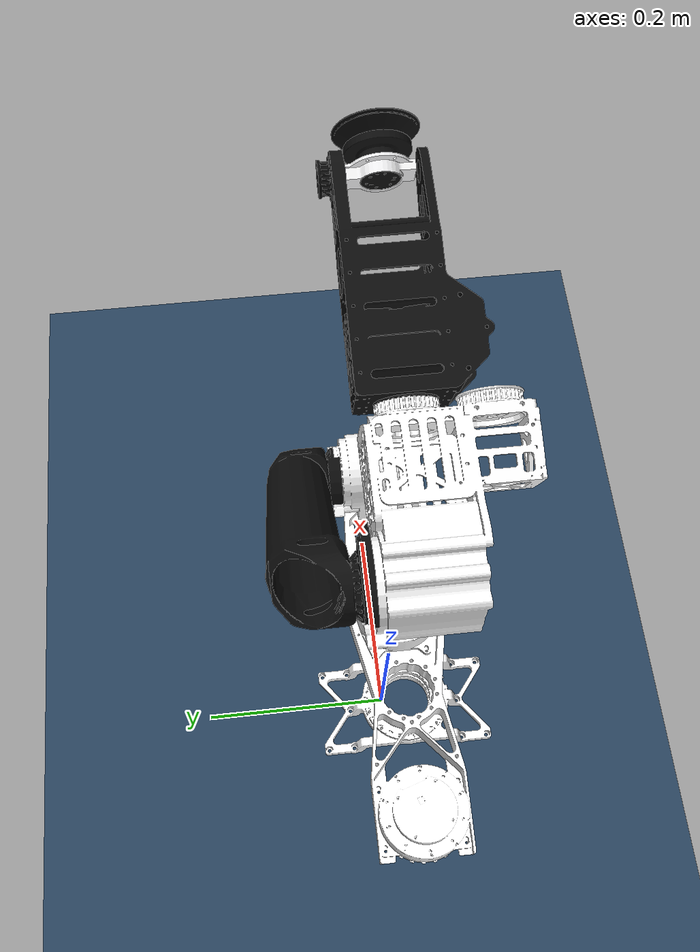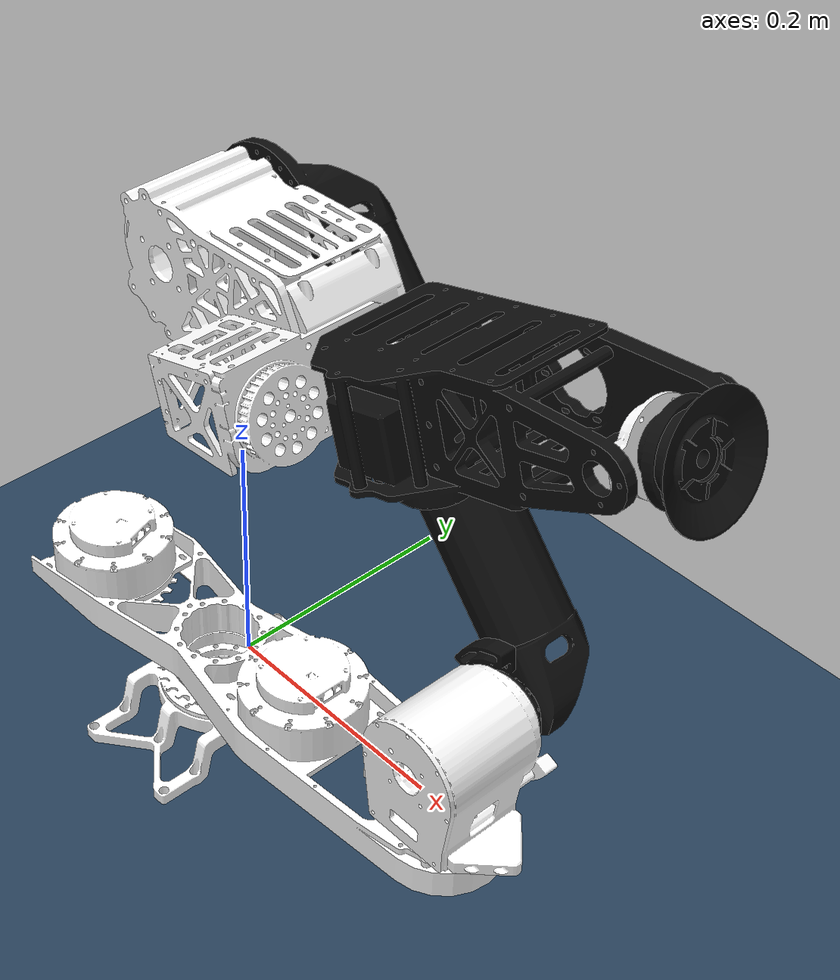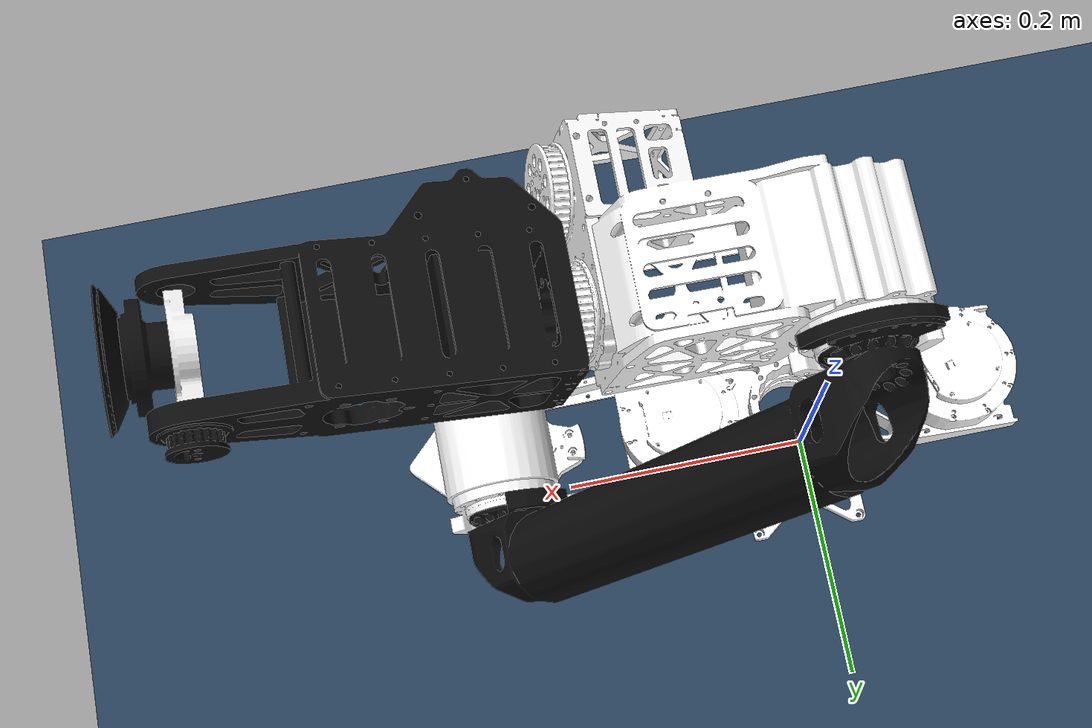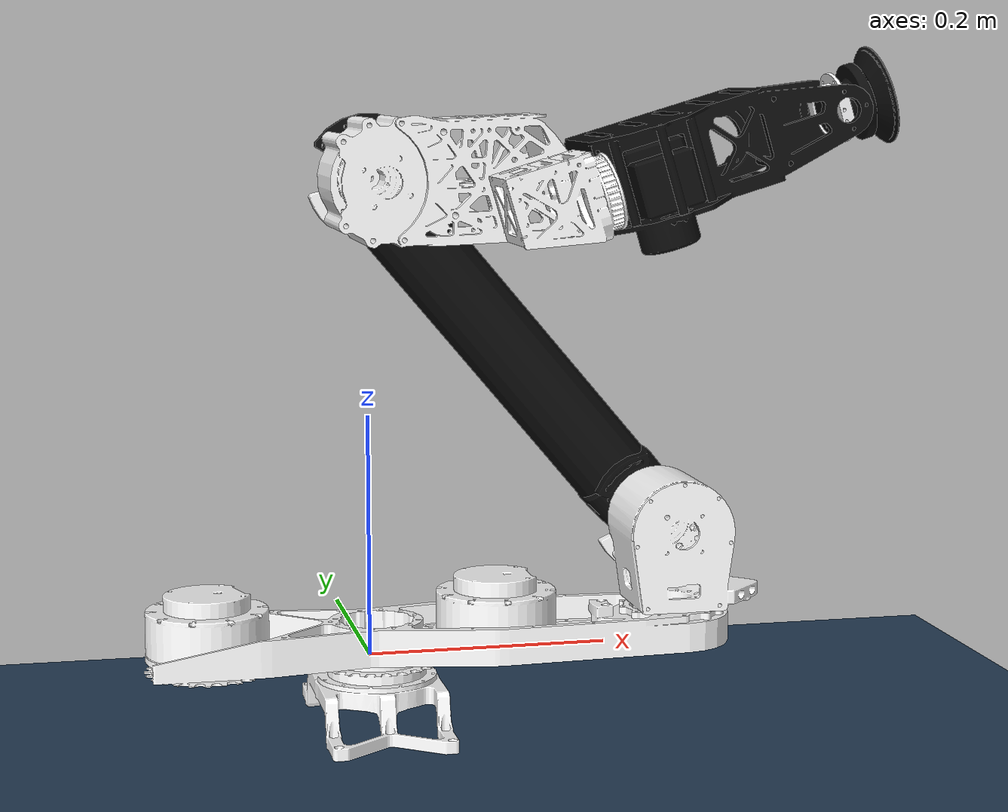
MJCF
<mujoco model="rm scene">

  <include file="robot_arm_simulation.xml"/>

  <statistic center="0.2 0 0.2" extent="1.0"/>

  <visual>
    <headlight diffuse="0.6 0.6 0.6" ambient="0.3 0.3 0.3" specular="0 0 0"/>
    <rgba haze="0.15 0.25 0.35 1"/>
    <global azimuth="-120" elevation="-20"/>
  </visual>

  <asset>
    <texture type="skybox" builtin="gradient" rgb1="0.3 0.5 0.7" rgb2="0 0 0" width="512" height="3072"/>
    <texture type="2d" name="groundplane" builtin="checker" mark="edge" rgb1="0.2 0.3 0.4" rgb2="0.1 0.2 0.3"
      markrgb="0.8 0.8 0.8" width="300" height="300"/>
    <material name="groundplane" texture="groundplane" texuniform="true" texrepeat="5 5" reflectance="0.2"/>
  </asset>

  <worldbody>

    <light pos="0 0 1.5" dir="0 0 -1" directional="true"/>
    <geom name="floor" pos="0 0 -0.1" size="0 0 0.05" type="plane" material="groundplane"/>
  </worldbody>

</mujoco>

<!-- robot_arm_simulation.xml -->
<mujoco model="robot_arm_simulation">
  <compiler angle="radian" meshdir="../meshes/" coordinate="local" inertiafromgeom="true"/>
  <option timestep="0.001" gravity="0 0 -9.81"/>

  <default>
    <default class="rm">
      <default class="visual">
        <geom type="mesh" contype="0" conaffinity="0" group="1" density="0" material="dark"/>
      </default>
    </default>
  </default>

  <asset>
    <material name="dark" specular="0" shininess="0.5" rgba="0.05 0.05 0.05 1"/>

    <mesh name="base_link" file="base_link.STL"/>
    <mesh name="link0" file="link0.STL"/>
    <mesh name="link1" file="link1.STL"/>
    <mesh name="link2" file="link2.STL"/>
    <mesh name="link3" file="link3.STL"/>
    <mesh name="link4" file="link4.STL"/>
    <mesh name="link5" file="link5.STL"/>
    <mesh name="link6" file="link6.STL"/>
  </asset>

  <worldbody>
    <geom type="mesh" contype="0" conaffinity="0" group="1" density="0" rgba="1 1 1 1" mesh="base_link"/>
    <geom type="mesh" rgba="1 1 1 1" mesh="base_link"/>
    <body name="link0" pos="0.00106821 -0.0292999 0.00800401" childclass="rm">
      <inertial pos="0.0111891 7.9567e-05 0.0214103" quat="0.335365 0.636818 0.332341 0.609543" mass="3.3" diaginertia="0.154785 0.139409 0.023806"/>
      <joint name="joint0" pos="0 0 0" axis="0 0 -1" range="-3.14 3.14"/>
      <geom type="mesh" contype="0" conaffinity="0" group="1" density="0" rgba="1 1 1 1" mesh="link0"/>
      <geom type="mesh" rgba="1 1 1 1" mesh="link0"/>
      <body name="link1" pos="0.25 0 -0.0015">
        <inertial pos="0.00281618 0.0187461 0.0803849" quat="0 0.707107 0 0.707107" mass="2.2" diaginertia="0.104333 0.104333 0.104333"/>
        <joint name="joint1" pos="0 0 0" axis="0 0 -1" range="-2.573 2.573"/>
        <geom type="mesh" contype="0" conaffinity="0" group="1" density="0" rgba="1 1 1 1" mesh="link1"/>
        <geom type="mesh" rgba="1 1 1 1" mesh="link1"/>
        <body name="link2" pos="0 0.0613 0.097" quat="-0.298197 0.298197 0.641154 0.641154">
          <inertial pos="0.19 0 0.0057" quat="0.405135 0.531255 -0.532605 0.519582" mass="0.85" diaginertia="0.0486667 0.0486667 0.0486667"/>
          <joint name="joint2" pos="0 0 0" axis="0 0 -1" range="-2.0933 0.7762"/>
          <geom class="visual" mesh="link2"/>
          <geom type="mesh" mesh="link2"/>
          <body name="link3" pos="0.38 0 -0.0008" quat="0 -0.421714 -0.906729 0">
            <inertial pos="0.0620064 -0.00325004 0.063225" quat="0.535874 0.433753 -0.504735 0.519557" mass="3" diaginertia="0.24902 0.242806 0.0191748"/>
            <joint name="joint3" pos="0 0 0" axis="0 0 1" range="-0.7762 1.0921"/>
            <geom type="mesh" contype="0" conaffinity="0" group="1" density="0" rgba="1 1 1 1" mesh="link3"/>
            <geom type="mesh" rgba="1 1 1 1" mesh="link3"/>
            <body name="link4" pos="0.170925 -0.00673187 0.0605" quat="0.423079 0.423079 0.566572 0.566572">
              <inertial pos="-1.06914e-07 -0.0450249 0.217" quat="0.708137 0.473953 0.52154 0.0436728" mass="1.7" diaginertia="0.169667 0.169667 0.169667"/>
              <joint name="joint4" pos="0 0 0" axis="0 0 1" range="-3.14 3.14"/>
              <geom class="visual" mesh="link4"/>
              <geom type="mesh" mesh="link4"/>
              <body name="link5" pos="0 -0.001 0.217" quat="0.5 0.5 -0.5 0.5">
                <inertial pos="0.00116773 1.35912e-09 0.00192543" quat="0.454163 0.710537 0.0163234 0.537221" mass="0.1" diaginertia="0.01 0.01 0.01"/>
                <joint name="joint5" pos="0 0 0" axis="0 0 -1" range="-1.57 1.57"/>
                <geom type="mesh" contype="0" conaffinity="0" group="1" density="0" rgba="0.956863 0.956863 0.960784 1" mesh="link5"/>
                <geom type="mesh" rgba="0.956863 0.956863 0.960784 1" mesh="link5"/>
                <body name="link6" quat="0 0.707107 0 0.707107">
                  <inertial pos="-4.42033e-09 7.20313e-10 0.0221859" quat="0 0.707107 0 0.707107" mass="0.2" diaginertia="0.033 0.021 0.012"/>
                  <joint name="joint6" pos="0 0 0" axis="0 0 -1" range="-3.14 3.14"/>
                  <geom class="visual" mesh="link6"/>
                  <geom type="mesh" mesh="link6"/>
                </body>
              </body>
            </body>
          </body>
        </body>
      </body>
    </body>
  </worldbody>

  <actuator>
    <position joint="joint0" gear="1" ctrllimited="true" ctrlrange="-3.14 3.14" kp="500" kv="5"/>
    <position joint="joint1" gear="1" ctrllimited="true" ctrlrange="-2.573 2.573" kp="500" kv="5"/>
    <position joint="joint2" gear="1" ctrllimited="true" ctrlrange="-2.0933 0.7762" kp="1000" kv="4"/>
    <position joint="joint3" gear="1" ctrllimited="true" ctrlrange="-0.7762 1.0921" kp="1000" kv="2"/>
    <position joint="joint4" gear="1" ctrllimited="true" ctrlrange="-3.14 3.14" kp="500" kv="1"/>
    <position joint="joint5" gear="1" ctrllimited="true" ctrlrange="-1.57 1.57" kp="250"/>
    <position joint="joint6" gear="1" ctrllimited="true" ctrlrange="-3.14 3.14" kp="200" kv="1" forcerange="-12 12"/>
  </actuator>

  <sensor>
    <jointpos name="jointpos0" joint="joint0"/>
    <jointpos name="jointpos1" joint="joint1"/>
    <jointpos name="jointpos2" joint="joint2"/>
    <jointpos name="jointpos3" joint="joint3"/>
    <jointpos name="jointpos4" joint="joint4"/>
    <jointpos name="jointpos5" joint="joint5"/>
    <jointpos name="jointpos6" joint="joint6"/>

    <jointvel name="jointvel0" joint="joint0"/>
    <jointvel name="jointvel1" joint="joint1"/>
    <jointvel name="jointvel2" joint="joint2"/>
    <jointvel name="jointvel3" joint="joint3"/>
    <jointvel name="jointvel4" joint="joint4"/>
    <jointvel name="jointvel5" joint="joint5"/>
    <jointvel name="jointvel6" joint="joint6"/>

    <jointactuatorfrc name="jointactuatorfrc0" joint="joint0" noise="0.01"/>
    <jointactuatorfrc name="jointactuatorfrc1" joint="joint1" noise="0.01"/>
    <jointactuatorfrc name="jointactuatorfrc2" joint="joint2" noise="0.01"/>
    <jointactuatorfrc name="jointactuatorfrc3" joint="joint3" noise="0.01"/>
    <jointactuatorfrc name="jointactuatorfrc4" joint="joint4" noise="0.01"/>
    <jointactuatorfrc name="jointactuatorfrc5" joint="joint5" noise="0.01"/>
    <jointactuatorfrc name="jointactuatorfrc6" joint="joint6" noise="0.01"/>
  </sensor>

</mujoco>
